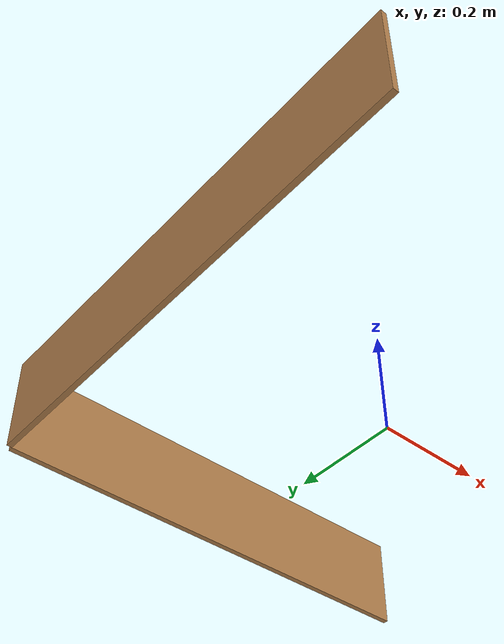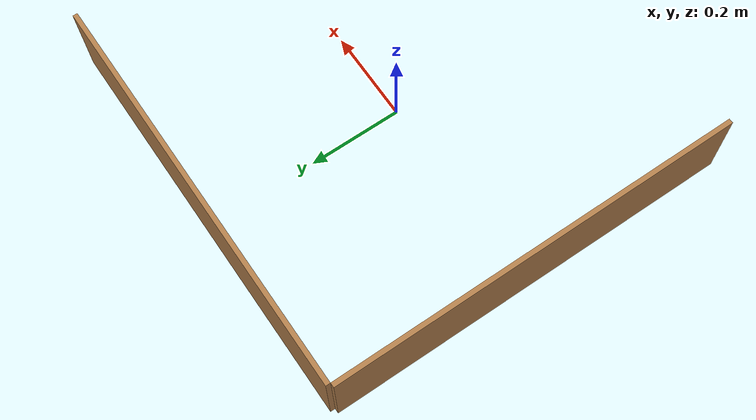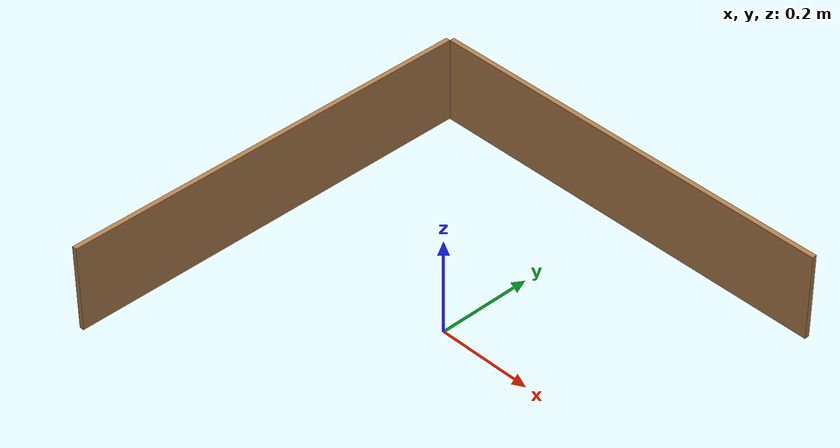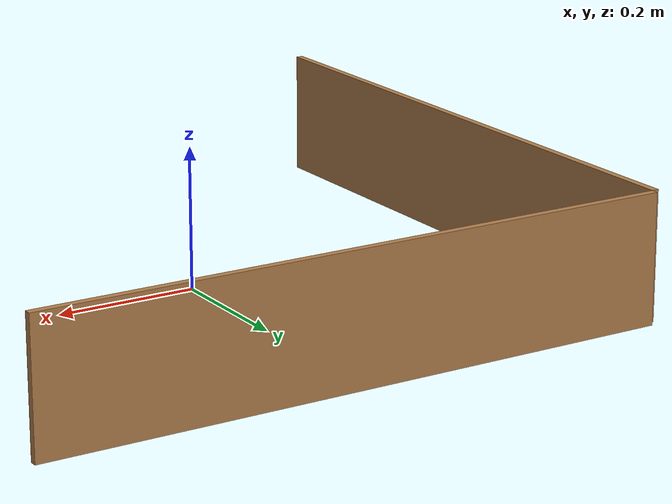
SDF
<?xml version="1.0"?>
<sdf version="1.4">
<model name="task3_room1">
  <static>false</static>
    <link name='room_1'>
      <pose frame=''>0 0 0.09 0 0 0</pose>
      <collision name='long_1coll'>
        <geometry>
          <box>
            <size>0.88 0.01 0.18</size>
          </box>
        </geometry>
        <pose frame=''>0.005 0.44 0 0 0 0</pose>
      </collision>
      <visual name='long_1vis'>
        <pose frame=''>0.005 0.44 0 0 0 0</pose>
        <geometry>
          <box>
            <size>0.88 0.01 0.18</size>
          </box>
        </geometry>
        <material>
          <script>
            <uri>file://media/materials/scripts/gazebo.material</uri>
            <name>Gazebo/Wood</name>
          </script>
        </material>
      </visual>
      <collision name='long_2coll'>
        <geometry>
          <box>
            <size>0.01 0.88 0.18</size>
          </box>
        </geometry>
        <pose frame=''>-0.44 -0.005 0 0 0 0</pose>
      </collision>
      <visual name='long_2vis'>
        <pose frame=''>-0.44 -0.005 0 0 0 0</pose>
        <geometry>
          <box>
            <size>0.01 0.88 0.18</size>
          </box>
        </geometry>
        <material>
          <script>
            <uri>file://media/materials/scripts/gazebo.material</uri>
            <name>Gazebo/Wood</name>
          </script>
        </material>
      </visual>
    </link>
  </model>
</sdf>
